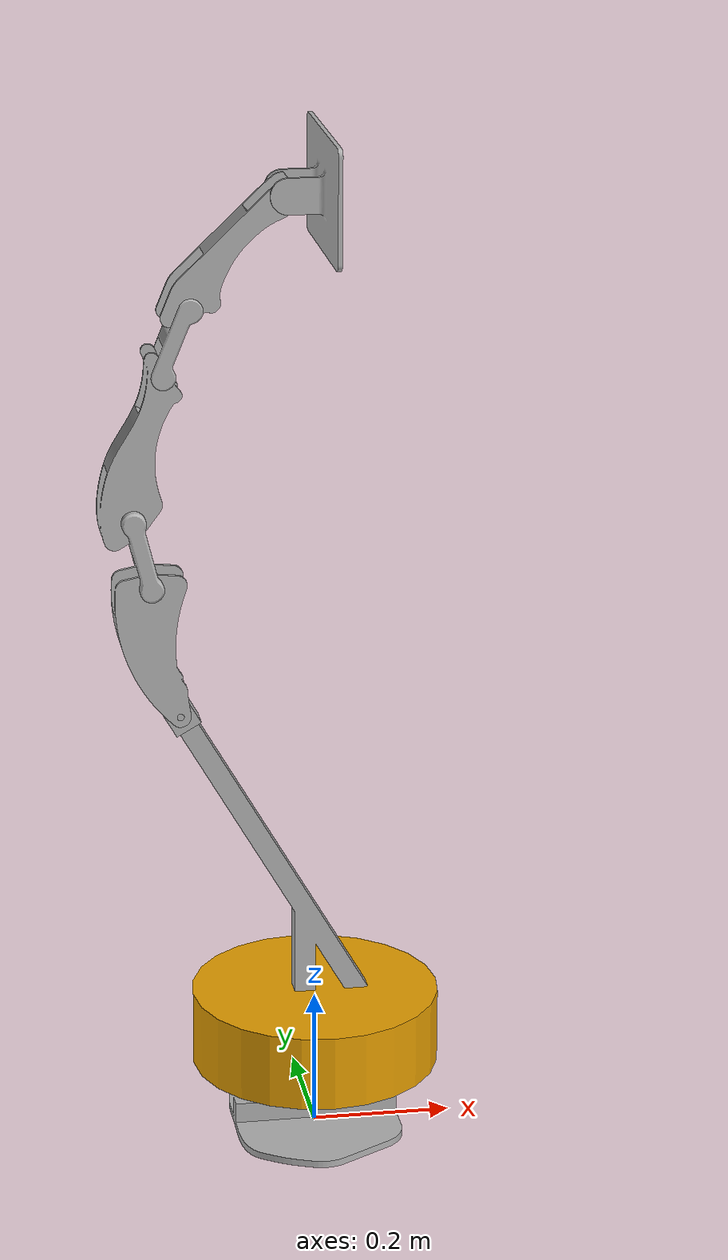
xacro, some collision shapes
<?xml version="1.0" ?>
<robot name="jaime" xmlns:xacro="http://www.ros.org/wiki/xacro">

<xacro:include filename="$(find jaime_description)/urdf/materials.xacro"/>
<xacro:include filename="$(find jaime_description)/urdf/ros2_control.xacro"/>
<xacro:include filename="$(find jaime_description)/urdf/kobuki_urdf.xacro"/>

<xacro:kobuki namespace="kobuki_"/>

<link name="base_link">
  <inertial>
    <origin xyz="-0.017499522969446787 -1.0526493480826139e-16 0.17440208425323425" rpy="0 0 0"/>
    <mass value="13.564884492489444"/>
    <inertia ixx="0.603443" iyy="0.661344" izz="0.113873" ixy="0.0" iyz="-0.0" ixz="0.136948"/>
  </inertial>
  <visual>
    <origin xyz="0 0 0" rpy="0 0 0"/>
    <geometry>
      <mesh filename="file://$(find jaime_description)/meshes/base_link.stl" scale="0.001 0.001 0.001"/>
    </geometry>
    <material name="silver"/>
  </visual>
  <collision>
    <origin xyz="0 0 0" rpy="0 0 0"/>
    <geometry>
      <mesh filename="file://$(find jaime_description)/meshes/base_link.stl" scale="0.001 0.001 0.001"/>
    </geometry>
  </collision>
</link>

<link name="l1_1">
  <inertial>
    <origin xyz="0.018846974278423967 0.0 -0.03263220567459435" rpy="0 0 0"/>
    <mass value="0.4182903755826701"/>
    <inertia ixx="0.000256" iyy="0.00028" izz="0.000202" ixy="0.0" iyz="-0.0" ixz="4.7e-05"/>
  </inertial>
  <visual>
    <origin xyz="0.219497 -0.0 -0.695365" rpy="0 0 0"/>
    <geometry>
      <mesh filename="file://$(find jaime_description)/meshes/l1_1.stl" scale="0.001 0.001 0.001"/>
    </geometry>
    <material name="silver"/>
  </visual>
  <collision>
    <origin xyz="0.219497 -0.0 -0.695365" rpy="0 0 0"/>
    <geometry>
      <mesh filename="file://$(find jaime_description)/meshes/l1_1.stl" scale="0.001 0.001 0.001"/>
    </geometry>
  </collision>
</link>

<link name="l2_1">
  <inertial>
    <origin xyz="-0.05172955321662459 -0.025000000000000067 0.10972328501507367" rpy="0 0 0"/>
    <mass value="2.9462310296804795"/>
    <inertia ixx="0.005824" iyy="0.006877" izz="0.002764" ixy="0.0" iyz="0.0" ixz="0.001107"/>
  </inertial>
  <visual>
    <origin xyz="0.194491 -0.025 -0.652068" rpy="0 0 0"/>
    <geometry>
      <mesh filename="file://$(find jaime_description)/meshes/l2_1.stl" scale="0.001 0.001 0.001"/>
    </geometry>
    <material name="silver"/>
  </visual>
  <collision>
    <origin xyz="0.194491 -0.025 -0.652068" rpy="0 0 0"/>
    <geometry>
      <mesh filename="file://$(find jaime_description)/meshes/l2_1.stl" scale="0.001 0.001 0.001"/>
    </geometry>
  </collision>
</link>

<link name="l3_1">
  <inertial>
    <origin xyz="-0.007044970296167463 -0.019999999999999987 0.048834569291703045" rpy="0 0 0"/>
    <mass value="0.9850583257637644"/>
    <inertia ixx="0.002085" iyy="0.001278" izz="0.000966" ixy="0.0" iyz="0.0" ixz="0.000165"/>
  </inertial>
  <visual>
    <origin xyz="0.25211 -0.02 -0.839201" rpy="0 0 0"/>
    <geometry>
      <mesh filename="file://$(find jaime_description)/meshes/l3_1.stl" scale="0.001 0.001 0.001"/>
    </geometry>
    <material name="silver"/>
  </visual>
  <collision>
    <origin xyz="0.25211 -0.02 -0.839201" rpy="0 0 0"/>
    <geometry>
      <mesh filename="file://$(find jaime_description)/meshes/l3_1.stl" scale="0.001 0.001 0.001"/>
    </geometry>
  </collision>
</link>

<link name="l4_1">
  <inertial>
    <origin xyz="0.0591163741924281 -0.019999466003310276 0.07299545187488221" rpy="0 0 0"/>
    <mass value="2.26906754439546"/>
    <inertia ixx="0.004039" iyy="0.007589" izz="0.004999" ixy="-0.0" iyz="-0.0" ixz="-0.003125"/>
  </inertial>
  <visual>
    <origin xyz="0.2662 -0.02 -0.93687" rpy="0 0 0"/>
    <geometry>
      <mesh filename="file://$(find jaime_description)/meshes/l4_1.stl" scale="0.001 0.001 0.001"/>
    </geometry>
    <material name="silver"/>
  </visual>
  <collision>
    <origin xyz="0.2662 -0.02 -0.93687" rpy="0 0 0"/>
    <geometry>
      <mesh filename="file://$(find jaime_description)/meshes/l4_1.stl" scale="0.001 0.001 0.001"/>
    </geometry>
  </collision>
</link>

<link name="l5_1">
  <inertial>
    <origin xyz="0.04436025539216232 -0.019999999999999088 0.021988793523559647" rpy="0 0 0"/>
    <mass value="0.50434331505376"/>
    <inertia ixx="0.000333" iyy="0.000466" izz="0.000633" ixy="0.0" iyz="-0.0" ixz="-0.000141"/>
  </inertial>
  <visual>
    <origin xyz="0.115381 -0.02 -1.079949" rpy="0 0 0"/>
    <geometry>
      <mesh filename="file://$(find jaime_description)/meshes/l5_1.stl" scale="0.001 0.001 0.001"/>
    </geometry>
    <material name="silver"/>
  </visual>
  <collision>
    <origin xyz="0.115381 -0.02 -1.079949" rpy="0 0 0"/>
    <geometry>
      <mesh filename="file://$(find jaime_description)/meshes/l5_1.stl" scale="0.001 0.001 0.001"/>
    </geometry>
  </collision>
</link>

<link name="l6_1">
  <inertial>
    <origin xyz="0.09822806072614722 -0.02000000000000024 -0.00042655759258147796" rpy="0 0 0"/>
    <mass value="1.5878361136644155"/>
    <inertia ixx="0.000907" iyy="0.005126" izz="0.005257" ixy="-0.0" iyz="-0.0" ixz="0.000788"/>
  </inertial>
  <visual>
    <origin xyz="0.023636 -0.02 -1.116289" rpy="0 0 0"/>
    <geometry>
      <mesh filename="file://$(find jaime_description)/meshes/l6_1.stl" scale="0.001 0.001 0.001"/>
    </geometry>
    <material name="silver"/>
  </visual>
  <collision>
    <origin xyz="0.023636 -0.02 -1.116289" rpy="0 0 0"/>
    <geometry>
      <mesh filename="file://$(find jaime_description)/meshes/l6_1.stl" scale="0.001 0.001 0.001"/>
    </geometry>
  </collision>
</link>

<link name="l7_1">
  <inertial>
    <origin xyz="0.049130716380135525 -0.02002073871139282 7.485311879884549e-06" rpy="0 0 0"/>
    <mass value="2.601272341639274"/>
    <inertia ixx="0.017542" iyy="0.005641" izz="0.012917" ixy="-3e-06" iyz="-0.0" ixz="1e-06"/>
  </inertial>
  <visual>
    <origin xyz="-0.176695 -0.02 -1.086979" rpy="0 0 0"/>
    <geometry>
      <mesh filename="file://$(find jaime_description)/meshes/l7_1.stl" scale="0.001 0.001 0.001"/>
    </geometry>
    <material name="silver"/>
  </visual>
  <collision>
    <origin xyz="-0.176695 -0.02 -1.086979" rpy="0 0 0"/>
    <geometry>
      <mesh filename="file://$(find jaime_description)/meshes/l7_1.stl" scale="0.001 0.001 0.001"/>
    </geometry>
  </collision>
</link>

<link name="world">
</link>

<link name="odom"/>
<!-- ver porque estan los dos de nuevo-->

<!-- inicio joints -->
<!-- se conecto kobuki a base_link y todo lo demas se conecto a kobuki despues -->

<joint name="world_to_odom" type="fixed">
  <origin xyz="0.0 0.0 0.0" rpy="0 0 0"/>
  <parent link="world"/>
  <child link="odom"/>
</joint>

<joint name="odom_to_base_link" type="floating">
  <parent link="odom"/>
  <child link="base_link"/>
</joint>

<joint name="kobuki_base_joint" type="fixed">
  <origin xyz="0 0 0.1" rpy="0 0 0" />
  <parent link="base_link"/>
  <child link="kobuki_base_link" />
</joint>

<joint name="l1_to_base_link" type="fixed">
  <origin xyz="-0.219497 0.0 0.695365" rpy="0 0 0"/>
  <parent link="base_link"/>
  <child link="l1_1"/>
</joint>

<joint name="l2_to_l1" type="fixed">
  <origin xyz="0.025006 0.025 -0.043297" rpy="0 0.1 0"/>
  <parent link="l1_1"/>
  <child link="l2_1"/>
</joint>

<joint name="l3_to_l2" type="revolute">
  <origin xyz="-0.057619 -0.005 0.187133" rpy="0 -0.2 0"/>
  <parent link="l2_1"/>
  <child link="l3_1"/>
  <axis xyz="0.0 1.0 0.0"/>
  <limit upper="1.0" lower="-0.5" effort="100" velocity="100"/>
</joint>

<joint name="l4_to_l3" type="revolute">
  <origin xyz="-0.01409 0.0 0.097669" rpy="0 -0.5 0"/>
  <parent link="l3_1"/>
  <child link="l4_1"/>
  <axis xyz="0.0 1.0 -0.0"/>
  <limit upper="1.0" lower="-0.5" effort="100" velocity="100"/>
</joint>

<joint name="l5_to_l4" type="revolute">
  <origin xyz="0.150819 0.0 0.143079" rpy="0 -0.2 0"/>
  <parent link="l4_1"/>
  <child link="l5_1"/>
  <axis xyz="-0.0 1.0 -0.0"/>
  <limit upper="1.0" lower="-0.5" effort="100" velocity="100"/>
</joint>

<joint name="l6_to_l5" type="revolute">
  <origin xyz="0.091745 0.0 0.03634" rpy="0 -0.2 0"/>
  <parent link="l5_1"/>
  <child link="l6_1"/>
  <axis xyz="0.0 1.0 0.0"/>
  <limit upper="1.0" lower="-0.5" effort="100" velocity="100"/>
</joint>

<joint name="l7_to_l6" type="revolute">
  <origin xyz="0.200331 0.0 -0.02931" rpy="0 1   0"/>
  <parent link="l6_1"/>
  <child link="l7_1"/>
  <axis xyz="0.0 1.0 -0.0"/>
  <limit upper="2.1" lower="-2.1" effort="100" velocity="100"/>
</joint>

<!-- tcp tablet -->

<link name="tcp_tablet">

  <visual>
    <origin xyz="0.0 0.0 0.0" rpy="0.0 0.0 0.0"/>
    <geometry>
      <sphere radius="0.001"/>
    </geometry>
  </visual>
  <collision>
    <origin xyz="0.0 0.0 0.0" rpy="0.0 0.0 0.0"/>
    <geometry>
      <sphere radius="0.001"/>
    </geometry>
  </collision>
</link>

<!-- tcp camara (TODO ajustar a pose real)-->

<link name="tcp_front_camera">
  <visual>
    <origin xyz="0.0 0.0 0.0" rpy="0.0 0.0 0.0"/>
    <geometry>
      <sphere radius="0.001"/>
    </geometry>
  </visual>
  <collision>
    <origin xyz="0.0 0.0 0.0" rpy="0.0 0.0 0.0"/>
    <geometry>
      <sphere radius="0.001"/>
    </geometry>
  </collision>

</link>

<!-- joint l7_to_l6 hacia tcp tablet -->
<!-- ajustar desplazamiento en x real con cad -->

<joint name="tablet_effector" type="fixed">
  <parent link="l7_1"/>
  <child link="tcp_tablet"/>
  <origin xyz="0.055 0.0 0.0" rpy="0.0 0.0 0.0"/>
</joint>

<!-- joint de tcp tablet a tcp camera -->
<!-- este se debe ajustar luego a la pose final de la camera -->
<joint name="front_camera_effector" type="fixed">
  <parent link="tcp_tablet"/>
  <child link="tcp_front_camera"/>
  <origin xyz="0.0 0.0 0.08" rpy="0.0 0.0 0.0"/>
</joint>

<link name="base_footprint"/>

<joint name="base_footprint_joint" type="fixed">
  <parent link="base_link"/>
  <child link="base_footprint"/>
  <origin xyz="0 0 0" rpy="0 0 0"/>
</joint>

<link name="laser"/>

<joint name="laser_joint" type="fixed">
  <parent link="base_link"/>
  <child link="laser"/>
  <origin xyz="0 0 0" rpy="0 0 ${-pi}"/>
</joint>

</robot>

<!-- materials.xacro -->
<robot name="jaime" xmlns:xacro="http://www.ros.org/wiki/xacro" >

<material name="silver">
  <color rgba="0.700 0.700 0.700 1.000"/>
</material>

</robot>

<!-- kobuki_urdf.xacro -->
<robot name="kobuki" xmlns:xacro="http://ros.org/wiki/xacro">
  <xacro:include filename="$(find jaime_description)/urdf/common_properties.urdf.xacro"/>

  <!-- Kobuki -->
  <xacro:macro name="kobuki" params = "namespace">

    <link name="${namespace}base_link"> #ver si se puede subir desde aca
      <visual>
        <geometry>
          <!-- new mesh -->
          <mesh filename="file://$(find jaime_description)/meshes/main_body.dae" />
        </geometry>
        <origin xyz="0.001 0 0.05199" rpy="0 0 0"/>
      </visual>
      <collision name="base">
        <geometry>
          <cylinder length="0.10938" radius="0.178"/>
        </geometry>
        <origin xyz="0.0 0 0.05949" rpy="0 0 0"/>
      </collision>
      <inertial>
        <!-- COM experimentally determined -->
        <origin xyz="0.01 0 0"/>
        <mass value="2.4"/> <!-- 2.4/2.6 kg for small/big battery pack -->
        <inertia ixx="0.019995" ixy="0.0" ixz="0.0"
                 iyy="0.019995" iyz="0.0"
                 izz="0.03675" />
      </inertial>
    </link>

    <joint name="${namespace}wheel_left_joint" type="continuous">
      <parent link="${namespace}base_link"/>
      <child link="${namespace}wheel_left_link"/>
      <origin xyz="0.00 ${0.23/2} 0.0250" rpy="${-M_PI/2} 0 0"/>
      <axis xyz="0 0 1"/>
    </joint>
    <link name="${namespace}wheel_left_link">
      <visual>
        <geometry>
          <mesh filename="file://$(find jaime_description)/meshes/wheel.dae"/>
        </geometry>
        <origin xyz="0 0 0" rpy="0 0 0"/>
      </visual>
      <collision>
        <geometry>
          <cylinder length="0.0206" radius="0.035"/>
        </geometry>
        <origin rpy="0 0 0" xyz="0 0 0"/>
      </collision>
        <inertial>
        <mass value="0.01" />
        <origin xyz="0 0 0" />
        <inertia ixx="0.001" ixy="0.0" ixz="0.0"
                 iyy="0.001" iyz="0.0"
                 izz="0.001" />
      </inertial>
    </link>

    <joint name="${namespace}wheel_right_joint" type="continuous">
      <parent link="${namespace}base_link"/>
      <child link="${namespace}wheel_right_link"/>
      <origin xyz="0.00 -${0.23/2} 0.0250" rpy="${-M_PI/2} 0 0"/>
      <axis xyz="0 0 1"/>
    </joint>
    <link name="${namespace}wheel_right_link">
      <visual>
        <geometry>
          <mesh filename="file://$(find jaime_description)/meshes/wheel.dae"/>
        </geometry>
        <origin xyz="0 0 0" rpy="0 0 0"/>
      </visual>
      <collision>
        <geometry>
          <cylinder length="0.0206" radius="0.035"/>
        </geometry>
        <origin rpy="0 0 0" xyz="0 0 0"/>
      </collision>
      <inertial>
        <mass value="0.01" />
        <origin xyz="0 0 0" />
        <inertia ixx="0.001" ixy="0.0" ixz="0.0"
                 iyy="0.001" iyz="0.0"
                 izz="0.001" />
      </inertial>
    </link>

    <joint name="${namespace}caster_front_joint" type="fixed">
      <parent link="${namespace}base_link"/>
      <child link="${namespace}caster_front_link"/>
      <origin xyz="0.115 0.0 0.007" rpy="${-M_PI/2} 0 0"/>
    </joint>
    <link name="${namespace}caster_front_link">
      <collision>
        <geometry>
          <cylinder length="0.0176" radius="0.017"/>
        </geometry>
        <origin rpy="0 0 0" xyz="0 0 0"/>
      </collision>
      <inertial>
        <mass value="0.01" />
        <origin xyz="0 0 0" />
        <inertia ixx="0.001" ixy="0.0" ixz="0.0"
                 iyy="0.001" iyz="0.0"
                 izz="0.001" />
      </inertial>
    </link>

    <joint name="${namespace}caster_back_joint" type="fixed">
      <parent link="${namespace}base_link"/>
      <child link="${namespace}caster_back_link"/>
      <origin xyz="-0.135 0.0 0.009" rpy="${-M_PI/2} 0 0"/>
    </joint>
    <link name="${namespace}caster_back_link">
      <collision>
        <geometry>
          <cylinder length="0.0176" radius="0.017"/>
        </geometry>
        <origin rpy="0 0 0" xyz="0 0 0"/>
      </collision>
      <inertial>
        <mass value="0.01" />
        <origin xyz="0 0 0" />
        <inertia ixx="0.001" ixy="0.0" ixz="0.0"
                 iyy="0.001" iyz="0.0"
                 izz="0.001" />
      </inertial>
    </link>

    <!-- Kobuki's sensors -->
    <joint name="${namespace}gyro_joint" type="fixed">
  <parent link="${namespace}base_link"/>
  <child link="${namespace}gyro_link"/>
  <origin xyz="0.056 0.062 0.0202" rpy="0 0 0"/>
  <axis xyz="0 1 0"/>
</joint>

<link name="${namespace}gyro_link">
  <inertial>
    <mass value="0.001"/>
    <origin xyz="0 0 0" rpy="0 0 0"/>
    <inertia ixx="0.0001" ixy="0" ixz="0"
             iyy="0.000001" iyz="0"
             izz="0.0001"/>
  </inertial>
</link>

    <joint name="${namespace}cliff_sensor_left_joint" type="fixed">
      <origin xyz="0.08734 0.13601 0.0214" rpy="0 ${M_PI/2} 0" />
      <parent link="${namespace}base_link"/>
      <child link="${namespace}cliff_sensor_left_link" />
    </joint>
    <link name="${namespace}cliff_sensor_left_link">
      <inertial>
        <mass value="0.0001" />
        <origin xyz="0 0 0" />
        <inertia ixx="0.0001" ixy="0.0" ixz="0.0"
                 iyy="0.0001" iyz="0.0"
                 izz="0.0001" />
      </inertial>
    </link>

    <joint name="${namespace}cliff_sensor_right_joint" type="fixed">
      <origin xyz="0.085 -0.13601 0.0214" rpy="0 ${M_PI/2} 0" />
      <parent link="${namespace}base_link"/>
      <child link="${namespace}cliff_sensor_right_link" />
    </joint>
    <link name="${namespace}cliff_sensor_right_link">
      <inertial>
        <mass value="0.0001" />
        <origin xyz="0 0 0" />
        <inertia ixx="0.0001" ixy="0.0" ixz="0.0"
                 iyy="0.0001" iyz="0.0"
                 izz="0.0001" />
      </inertial>
    </link>

    <joint name="${namespace}cliff_sensor_front_joint" type="fixed">
      <origin xyz="0.156 0.00 0.0214" rpy="0 ${M_PI/2} 0" />
      <parent link="${namespace}base_link"/>
      <child link="${namespace}cliff_sensor_front_link" />
    </joint>
    <link name="${namespace}cliff_sensor_front_link">
      <inertial>
        <mass value="0.0001" />
        <origin xyz="0 0 0" />
        <inertia ixx="0.0001" ixy="0.0" ixz="0.0"
                 iyy="0.0001" iyz="0.0"
                 izz="0.0001" />
      </inertial>
    </link>

  </xacro:macro>
</robot>
